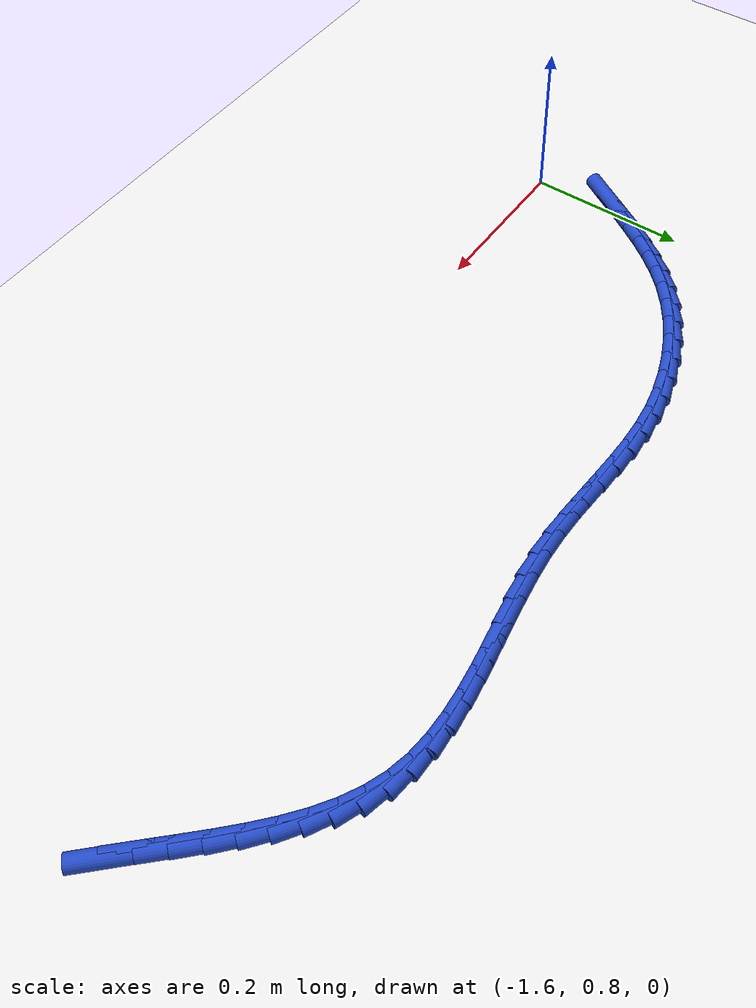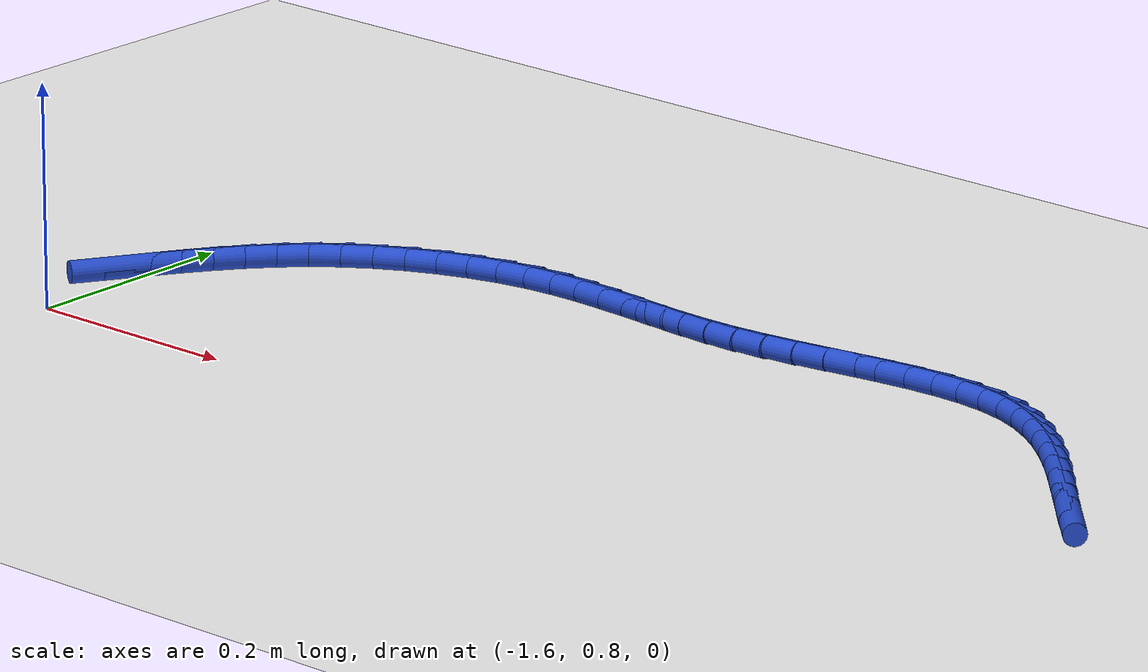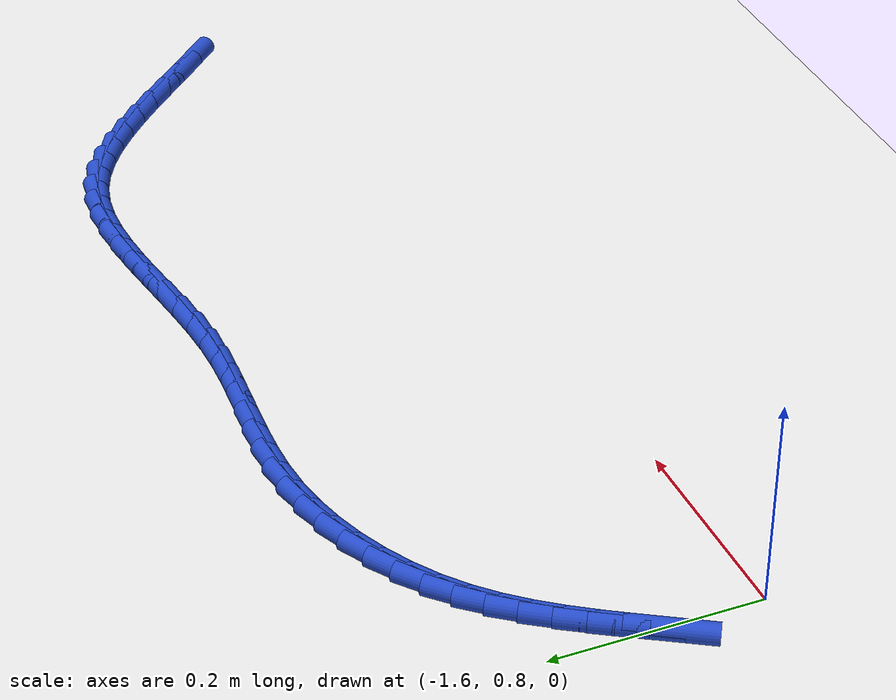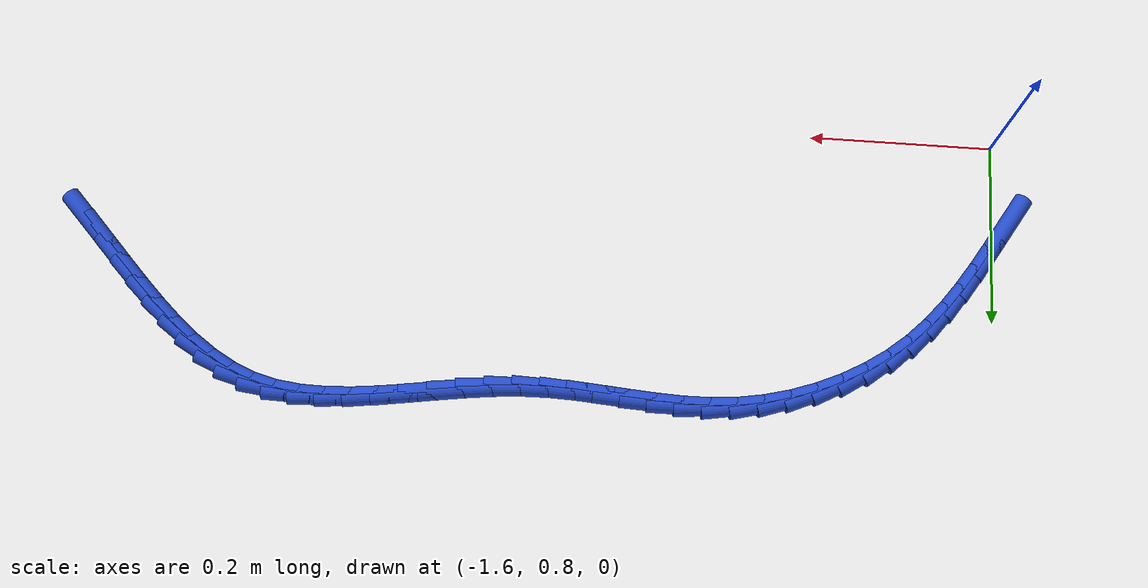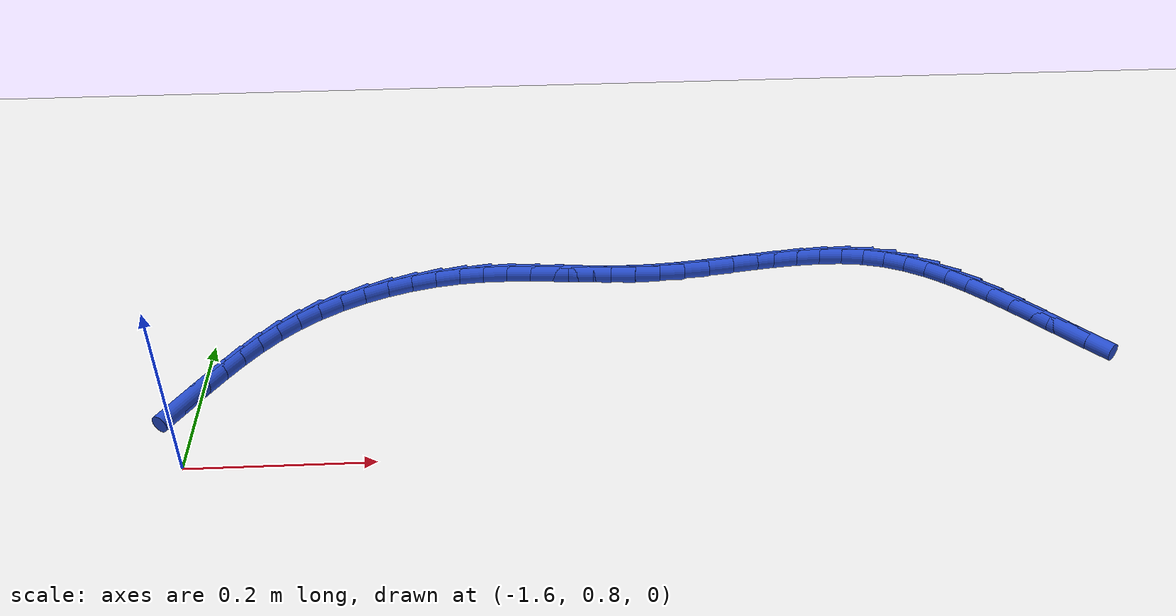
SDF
<sdf version="1.6">
 <world name="default">
  <model name="ground_plane">
   <static>1</static>
   <link name="link">
    <collision name="collision">
     <geometry><plane><normal>0 0 1</normal><size>100 100</size></plane></geometry>
     <surface><friction><ode><mu>100</mu><mu2>50</mu2></ode></friction></surface>
    </collision>
    <visual name="visual">
     <cast_shadows>0</cast_shadows>
     <geometry><plane><normal>0 0 1</normal><size>100 100</size></plane></geometry>
     <material>
      <script><uri>file://media/materials/scripts/gazebo.material</uri><name>Gazebo/WhiteGlow</name></script>
     </material>
    </visual>
   </link>
  </model>
  <model name="line">
   <link name="link_41">
    <pose>-0.618033167621468 0.9546721841326212 0.01 0 1.57 -0.8111275321198776</pose>
    <collision name="collision">
     <geometry><cylinder><radius>0.01</radius><length>0.08</length></cylinder></geometry>
    </collision>
    <visual name="visual">
     <material>
      <script><name>Gazebo/Blue</name><uri>file://media/materials/scripts/gazebo.material</uri></script>
     </material>
     <geometry><cylinder><radius>0.01</radius><length>0.08</length></cylinder></geometry>
    </visual>
   </link>
   <link name="link_42">
    <pose>-0.6390552761179606 0.976804883678784 0.01 0 1.57 -0.8189957309504938</pose>
    <collision name="collision">
     <geometry><cylinder><radius>0.01</radius><length>0.08</length></cylinder></geometry>
    </collision>
    <visual name="visual">
     <material>
      <script><name>Gazebo/Blue</name><uri>file://media/materials/scripts/gazebo.material</uri></script>
     </material>
     <geometry><cylinder><radius>0.01</radius><length>0.08</length></cylinder></geometry>
    </visual>
   </link>
   <link name="link_43">
    <pose>-0.6598640162530264 0.9990610443844463 0.01 0 1.57 -0.8121458686661917</pose>
    <collision name="collision">
     <geometry><cylinder><radius>0.01</radius><length>0.08</length></cylinder></geometry>
    </collision>
    <visual name="visual">
     <material>
      <script><name>Gazebo/Blue</name><uri>file://media/materials/scripts/gazebo.material</uri></script>
     </material>
     <geometry><cylinder><radius>0.01</radius><length>0.08</length></cylinder></geometry>
    </visual>
   </link>
   <link name="link_44">
    <pose>-0.6806362096416035 1.020975274000211 0.01 0 1.57 -0.7900254724383622</pose>
    <collision name="collision">
     <geometry><cylinder><radius>0.01</radius><length>0.08</length></cylinder></geometry>
    </collision>
    <visual name="visual">
     <material>
      <script><name>Gazebo/Blue</name><uri>file://media/materials/scripts/gazebo.material</uri></script>
     </material>
     <geometry><cylinder><radius>0.01</radius><length>0.08</length></cylinder></geometry>
    </visual>
   </link>
   <link name="link_45">
    <pose>-0.7015486778986324 1.0420821802766824 0.01 0 1.57 -0.7514305601705806</pose>
    <collision name="collision">
     <geometry><cylinder><radius>0.01</radius><length>0.08</length></cylinder></geometry>
    </collision>
    <visual name="visual">
     <material>
      <script><name>Gazebo/Blue</name><uri>file://media/materials/scripts/gazebo.material</uri></script>
     </material>
     <geometry><cylinder><radius>0.01</radius><length>0.08</length></cylinder></geometry>
    </visual>
   </link>
   <link name="link_46">
    <pose>-0.7227782426390519 1.0619163709644648 0.01 0 1.57 -0.6945529811503913</pose>
    <collision name="collision">
     <geometry><cylinder><radius>0.01</radius><length>0.08</length></cylinder></geometry>
    </collision>
    <visual name="visual">
     <material>
      <script><name>Gazebo/Blue</name><uri>file://media/materials/scripts/gazebo.material</uri></script>
     </material>
     <geometry><cylinder><radius>0.01</radius><length>0.08</length></cylinder></geometry>
    </visual>
   </link>
   <link name="link_47">
    <pose>-0.744501725477802 1.0800124538141618 0.01 0 1.57 -0.6171886799488164</pose>
    <collision name="collision">
     <geometry><cylinder><radius>0.01</radius><length>0.08</length></cylinder></geometry>
    </collision>
    <visual name="visual">
     <material>
      <script><name>Gazebo/Blue</name><uri>file://media/materials/scripts/gazebo.material</uri></script>
     </material>
     <geometry><cylinder><radius>0.01</radius><length>0.08</length></cylinder></geometry>
    </visual>
   </link>
   <link name="link_48">
    <pose>-0.7668959480298216 1.0959050365763767 0.01 0 1.57 -0.5172846772544478</pose>
    <collision name="collision">
     <geometry><cylinder><radius>0.01</radius><length>0.08</length></cylinder></geometry>
    </collision>
    <visual name="visual">
     <material>
      <script><name>Gazebo/Blue</name><uri>file://media/materials/scripts/gazebo.material</uri></script>
     </material>
     <geometry><cylinder><radius>0.01</radius><length>0.08</length></cylinder></geometry>
    </visual>
   </link>
   <link name="link_49">
    <pose>-0.7901377319100504 1.1091287270017145 0.01 0 1.57 -0.39403604646313295</pose>
    <collision name="collision">
     <geometry><cylinder><radius>0.01</radius><length>0.08</length></cylinder></geometry>
    </collision>
    <visual name="visual">
     <material>
      <script><name>Gazebo/Blue</name><uri>file://media/materials/scripts/gazebo.material</uri></script>
     </material>
     <geometry><cylinder><radius>0.01</radius><length>0.08</length></cylinder></geometry>
    </visual>
   </link>
   <link name="link_50">
    <pose>-0.8144038987334277 1.119218132840778 0.01 0 1.57 -0.25263680146952816</pose>
    <collision name="collision">
     <geometry><cylinder><radius>0.01</radius><length>0.08</length></cylinder></geometry>
    </collision>
    <visual name="visual">
     <material>
      <script><name>Gazebo/Blue</name><uri>file://media/materials/scripts/gazebo.material</uri></script>
     </material>
     <geometry><cylinder><radius>0.01</radius><length>0.08</length></cylinder></geometry>
    </visual>
   </link>
   <link name="link_51">
    <pose>-0.8398457127534601 1.1257860017441947 0.01 0 1.57 -0.12362220827639893</pose>
    <collision name="collision">
     <geometry><cylinder><radius>0.01</radius><length>0.08</length></cylinder></geometry>
    </collision>
    <visual name="visual">
     <material>
      <script><name>Gazebo/Blue</name><uri>file://media/materials/scripts/gazebo.material</uri></script>
     </material>
     <geometry><cylinder><radius>0.01</radius><length>0.08</length></cylinder></geometry>
    </visual>
   </link>
   <link name="link_52">
    <pose>-0.8664047725910601 1.1290861198208022 0.01 0 1.57 -0.021815859087895323</pose>
    <collision name="collision">
     <geometry><cylinder><radius>0.01</radius><length>0.08</length></cylinder></geometry>
    </collision>
    <visual name="visual">
     <material>
      <script><name>Gazebo/Blue</name><uri>file://media/materials/scripts/gazebo.material</uri></script>
     </material>
     <geometry><cylinder><radius>0.01</radius><length>0.08</length></cylinder></geometry>
    </visual>
   </link>
   <link name="link_53">
    <pose>-0.8939199082076889 1.1296864813889231 0.01 0 1.57 0.05396653819626558</pose>
    <collision name="collision">
     <geometry><cylinder><radius>0.01</radius><length>0.08</length></cylinder></geometry>
    </collision>
    <visual name="visual">
     <material>
      <script><name>Gazebo/Blue</name><uri>file://media/materials/scripts/gazebo.material</uri></script>
     </material>
     <geometry><cylinder><radius>0.01</radius><length>0.08</length></cylinder></geometry>
    </visual>
   </link>
   <link name="link_54">
    <pose>-0.9222292434391571 1.1281572396981867 0.01 0 1.57 0.10631889022531293</pose>
    <collision name="collision">
     <geometry><cylinder><radius>0.01</radius><length>0.08</length></cylinder></geometry>
    </collision>
    <visual name="visual">
     <material>
      <script><name>Gazebo/Blue</name><uri>file://media/materials/scripts/gazebo.material</uri></script>
     </material>
     <geometry><cylinder><radius>0.01</radius><length>0.08</length></cylinder></geometry>
    </visual>
   </link>
   <link name="link_55">
    <pose>-0.9511709021212758 1.1250685479982225 0.01 0 1.57 0.1377716470293281</pose>
    <collision name="collision">
     <geometry><cylinder><radius>0.01</radius><length>0.08</length></cylinder></geometry>
    </collision>
    <visual name="visual">
     <material>
      <script><name>Gazebo/Blue</name><uri>file://media/materials/scripts/gazebo.material</uri></script>
     </material>
     <geometry><cylinder><radius>0.01</radius><length>0.08</length></cylinder></geometry>
    </visual>
   </link>
   <link name="link_56">
    <pose>-0.9805830080898551 1.1209905595386602 0.01 0 1.57 0.15017404260625164</pose>
    <collision name="collision">
     <geometry><cylinder><radius>0.01</radius><length>0.08</length></cylinder></geometry>
    </collision>
    <visual name="visual">
     <material>
      <script><name>Gazebo/Blue</name><uri>file://media/materials/scripts/gazebo.material</uri></script>
     </material>
     <geometry><cylinder><radius>0.01</radius><length>0.08</length></cylinder></geometry>
    </visual>
   </link>
   <link name="link_57">
    <pose>-1.0103036851807052 1.1164934275691285 0.01 0 1.57 0.14449984826473888</pose>
    <collision name="collision">
     <geometry><cylinder><radius>0.01</radius><length>0.08</length></cylinder></geometry>
    </collision>
    <visual name="visual">
     <material>
      <script><name>Gazebo/Blue</name><uri>file://media/materials/scripts/gazebo.material</uri></script>
     </material>
     <geometry><cylinder><radius>0.01</radius><length>0.08</length></cylinder></geometry>
    </visual>
   </link>
   <link name="link_58">
    <pose>-1.040171057229638 1.1121473053392583 0.01 0 1.57 0.12083864137538612</pose>
    <collision name="collision">
     <geometry><cylinder><radius>0.01</radius><length>0.08</length></cylinder></geometry>
    </collision>
    <visual name="visual">
     <material>
      <script><name>Gazebo/Blue</name><uri>file://media/materials/scripts/gazebo.material</uri></script>
     </material>
     <geometry><cylinder><radius>0.01</radius><length>0.08</length></cylinder></geometry>
    </visual>
   </link>
   <link name="link_59">
    <pose>-1.0700232480724636 1.108522346098678 0.01 0 1.57 0.07847817109037461</pose>
    <collision name="collision">
     <geometry><cylinder><radius>0.01</radius><length>0.08</length></cylinder></geometry>
    </collision>
    <visual name="visual">
     <material>
      <script><name>Gazebo/Blue</name><uri>file://media/materials/scripts/gazebo.material</uri></script>
     </material>
     <geometry><cylinder><radius>0.01</radius><length>0.08</length></cylinder></geometry>
    </visual>
   </link>
   <link name="link_60">
    <pose>-1.099698381544992 1.1061887030970174 0.01 0 1.57 0.018947330778175637</pose>
    <collision name="collision">
     <geometry><cylinder><radius>0.01</radius><length>0.08</length></cylinder></geometry>
    </collision>
    <visual name="visual">
     <material>
      <script><name>Gazebo/Blue</name><uri>file://media/materials/scripts/gazebo.material</uri></script>
     </material>
     <geometry><cylinder><radius>0.01</radius><length>0.08</length></cylinder></geometry>
    </visual>
   </link>
   <link name="link_61">
    <pose>-1.1290511345351344 1.1056324802136825 0.01 0 1.57 -0.034059775241199367</pose>
    <collision name="collision">
     <geometry><cylinder><radius>0.01</radius><length>0.08</length></cylinder></geometry>
    </collision>
    <visual name="visual">
     <material>
      <script><name>Gazebo/Blue</name><uri>file://media/materials/scripts/gazebo.material</uri></script>
     </material>
     <geometry><cylinder><radius>0.01</radius><length>0.08</length></cylinder></geometry>
    </visual>
   </link>
   <link name="link_62">
    <pose>-1.158077645581702 1.1066214991287058 0.01 0 1.57 -0.06725723691217136</pose>
    <collision name="collision">
     <geometry><cylinder><radius>0.01</radius><length>0.08</length></cylinder></geometry>
    </collision>
    <visual name="visual">
     <material>
      <script><name>Gazebo/Blue</name><uri>file://media/materials/scripts/gazebo.material</uri></script>
     </material>
     <geometry><cylinder><radius>0.01</radius><length>0.08</length></cylinder></geometry>
    </visual>
   </link>
   <link name="link_63">
    <pose>-1.186845798713366 1.1085592883873752 0.01 0 1.57 -0.07986405460465261</pose>
    <collision name="collision">
     <geometry><cylinder><radius>0.01</radius><length>0.08</length></cylinder></geometry>
    </collision>
    <visual name="visual">
     <material>
      <script><name>Gazebo/Blue</name><uri>file://media/materials/scripts/gazebo.material</uri></script>
     </material>
     <geometry><cylinder><radius>0.01</radius><length>0.08</length></cylinder></geometry>
    </visual>
   </link>
   <link name="link_64">
    <pose>-1.2154240390645212 1.11084652747836 0.01 0 1.57 -0.07147324831672551</pose>
    <collision name="collision">
     <geometry><cylinder><radius>0.01</radius><length>0.08</length></cylinder></geometry>
    </collision>
    <visual name="visual">
     <material>
      <script><name>Gazebo/Blue</name><uri>file://media/materials/scripts/gazebo.material</uri></script>
     </material>
     <geometry><cylinder><radius>0.01</radius><length>0.08</length></cylinder></geometry>
    </visual>
   </link>
   <link name="link_65">
    <pose>-1.2438808117695617 1.1128838958903309 0.01 0 1.57 -0.04180732755255949</pose>
    <collision name="collision">
     <geometry><cylinder><radius>0.01</radius><length>0.08</length></cylinder></geometry>
    </collision>
    <visual name="visual">
     <material>
      <script><name>Gazebo/Blue</name><uri>file://media/materials/scripts/gazebo.material</uri></script>
     </material>
     <geometry><cylinder><radius>0.01</radius><length>0.08</length></cylinder></geometry>
    </visual>
   </link>
   <link name="link_66">
    <pose>-1.2722845619628824 1.114072073111958 0.01 0 1.57 0.009160266559993942</pose>
    <collision name="collision">
     <geometry><cylinder><radius>0.01</radius><length>0.08</length></cylinder></geometry>
    </collision>
    <visual name="visual">
     <material>
      <script><name>Gazebo/Blue</name><uri>file://media/materials/scripts/gazebo.material</uri></script>
     </material>
     <geometry><cylinder><radius>0.01</radius><length>0.08</length></cylinder></geometry>
    </visual>
   </link>
   <link name="link_67">
    <pose>-1.3007037347788775 1.1138117386319109 0.01 0 1.57 0.08079890005626623</pose>
    <collision name="collision">
     <geometry><cylinder><radius>0.01</radius><length>0.08</length></cylinder></geometry>
    </collision>
    <visual name="visual">
     <material>
      <script><name>Gazebo/Blue</name><uri>file://media/materials/scripts/gazebo.material</uri></script>
     </material>
     <geometry><cylinder><radius>0.01</radius><length>0.08</length></cylinder></geometry>
    </visual>
   </link>
   <link name="link_68">
    <pose>-1.329206697748374 1.1115037057530914 0.01 0 1.57 0.166385570025785</pose>
    <collision name="collision">
     <geometry><cylinder><radius>0.01</radius><length>0.08</length></cylinder></geometry>
    </collision>
    <visual name="visual">
     <material>
      <script><name>Gazebo/Blue</name><uri>file://media/materials/scripts/gazebo.material</uri></script>
     </material>
     <geometry><cylinder><radius>0.01</radius><length>0.08</length></cylinder></geometry>
    </visual>
   </link>
   <link name="link_69">
    <pose>-1.3577701775487236 1.1067068069359471 0.01 0 1.57 0.25096195431184914</pose>
    <collision name="collision">
     <geometry><cylinder><radius>0.01</radius><length>0.08</length></cylinder></geometry>
    </collision>
    <visual name="visual">
     <material>
      <script><name>Gazebo/Blue</name><uri>file://media/materials/scripts/gazebo.material</uri></script>
     </material>
     <geometry><cylinder><radius>0.01</radius><length>0.08</length></cylinder></geometry>
    </visual>
   </link>
   <link name="link_70">
    <pose>-1.3861020556874024 1.099443452681102 0.01 0 1.57 0.3336914762457721</pose>
    <collision name="collision">
     <geometry><cylinder><radius>0.01</radius><length>0.08</length></cylinder></geometry>
    </collision>
    <visual name="visual">
     <material>
      <script><name>Gazebo/Blue</name><uri>file://media/materials/scripts/gazebo.material</uri></script>
     </material>
     <geometry><cylinder><radius>0.01</radius><length>0.08</length></cylinder></geometry>
    </visual>
   </link>
   <link name="link_71">
    <pose>-1.4138611665381076 1.0898206269786848 0.01 0 1.57 0.416484865248859</pose>
    <collision name="collision">
     <geometry><cylinder><radius>0.01</radius><length>0.08</length></cylinder></geometry>
    </collision>
    <visual name="visual">
     <material>
      <script><name>Gazebo/Blue</name><uri>file://media/materials/scripts/gazebo.material</uri></script>
     </material>
     <geometry><cylinder><radius>0.01</radius><length>0.08</length></cylinder></geometry>
    </visual>
   </link>
   <link name="link_72">
    <pose>-1.4407063444745367 1.077945313818826 0.01 0 1.57 0.5012298617428621</pose>
    <collision name="collision">
     <geometry><cylinder><radius>0.01</radius><length>0.08</length></cylinder></geometry>
    </collision>
    <visual name="visual">
     <material>
      <script><name>Gazebo/Blue</name><uri>file://media/materials/scripts/gazebo.material</uri></script>
     </material>
     <geometry><cylinder><radius>0.01</radius><length>0.08</length></cylinder></geometry>
    </visual>
   </link>
   <link name="link_73">
    <pose>-1.4662964238703877 1.0639244971916537 0.01 0 1.57 0.5898313972774619</pose>
    <collision name="collision">
     <geometry><cylinder><radius>0.01</radius><length>0.08</length></cylinder></geometry>
    </collision>
    <visual name="visual">
     <material>
      <script><name>Gazebo/Blue</name><uri>file://media/materials/scripts/gazebo.material</uri></script>
     </material>
     <geometry><cylinder><radius>0.01</radius><length>0.08</length></cylinder></geometry>
    </visual>
   </link>
   <link name="link_74">
    <pose>-1.4902902390993582 1.0478651610872975 0.01 0 1.57 0.6842015666213295</pose>
    <collision name="collision">
     <geometry><cylinder><radius>0.01</radius><length>0.08</length></cylinder></geometry>
    </collision>
    <visual name="visual">
     <material>
      <script><name>Gazebo/Blue</name><uri>file://media/materials/scripts/gazebo.material</uri></script>
     </material>
     <geometry><cylinder><radius>0.01</radius><length>0.08</length></cylinder></geometry>
    </visual>
   </link>
   <link name="link_75">
    <pose>-1.5123475015055106 1.0298745031128753 0.01 0 1.57 0.780053804157712</pose>
    <collision name="collision">
     <geometry><cylinder><radius>0.01</radius><length>0.08</length></cylinder></geometry>
    </collision>
    <visual name="visual">
     <material>
      <script><name>Gazebo/Blue</name><uri>file://media/materials/scripts/gazebo.material</uri></script>
     </material>
     <geometry><cylinder><radius>0.01</radius><length>0.08</length></cylinder></geometry>
    </visual>
   </link>
   <link name="link_76">
    <pose>-1.5323263620153036 1.0101080578177477 0.01 0 1.57 0.8629842327079048</pose>
    <collision name="collision">
     <geometry><cylinder><radius>0.01</radius><length>0.08</length></cylinder></geometry>
    </collision>
    <visual name="visual">
     <material>
      <script><name>Gazebo/Blue</name><uri>file://media/materials/scripts/gazebo.material</uri></script>
     </material>
     <geometry><cylinder><radius>0.01</radius><length>0.08</length></cylinder></geometry>
    </visual>
   </link>
   <link name="link_77">
    <pose>-1.5505340297875319 0.9888307436835464 0.01 0 1.57 0.9294520587463381</pose>
    <collision name="collision">
     <geometry><cylinder><radius>0.01</radius><length>0.08</length></cylinder></geometry>
    </collision>
    <visual name="visual">
     <material>
      <script><name>Gazebo/Blue</name><uri>file://media/materials/scripts/gazebo.material</uri></script>
     </material>
     <geometry><cylinder><radius>0.01</radius><length>0.08</length></cylinder></geometry>
    </visual>
   </link>
   <link name="link_78">
    <pose>-1.5673394651487784 0.9663225208614873 0.01 0 1.57 0.9788873466996397</pose>
    <collision name="collision">
     <geometry><cylinder><radius>0.01</radius><length>0.08</length></cylinder></geometry>
    </collision>
    <visual name="visual">
     <material>
      <script><name>Gazebo/Blue</name><uri>file://media/materials/scripts/gazebo.material</uri></script>
     </material>
     <geometry><cylinder><radius>0.01</radius><length>0.08</length></cylinder></geometry>
    </visual>
   </link>
   <link name="link_79">
    <pose>-1.5831116284256277 0.9428633495027873 0.01 0 1.57 1.0114076266689458</pose>
    <collision name="collision">
     <geometry><cylinder><radius>0.01</radius><length>0.08</length></cylinder></geometry>
    </collision>
    <visual name="visual">
     <material>
      <script><name>Gazebo/Blue</name><uri>file://media/materials/scripts/gazebo.material</uri></script>
     </material>
     <geometry><cylinder><radius>0.01</radius><length>0.08</length></cylinder></geometry>
    </visual>
   </link>
   <link name="link_80">
    <pose>-1.5982194799446616 0.9187331897586619 0.01 0 1.57 1.0273899686158166</pose>
    <collision name="collision">
     <geometry><cylinder><radius>0.01</radius><length>0.08</length></cylinder></geometry>
    </collision>
    <visual name="visual">
     <material>
      <script><name>Gazebo/Blue</name><uri>file://media/materials/scripts/gazebo.material</uri></script>
     </material>
     <geometry><cylinder><radius>0.01</radius><length>0.08</length></cylinder></geometry>
    </visual>
   </link>
   <link name="link_81">
    <pose>-1.6130319800324653 0.8942120017803273 0.01 0 1.57 1.0271961795156876</pose>
    <collision name="collision">
     <geometry><cylinder><radius>0.01</radius><length>0.08</length></cylinder></geometry>
    </collision>
    <visual name="visual">
     <material>
      <script><name>Gazebo/Blue</name><uri>file://media/materials/scripts/gazebo.material</uri></script>
     </material>
     <geometry><cylinder><radius>0.01</radius><length>0.08</length></cylinder></geometry>
    </visual>
   </link>
  </model>
 </world>
</sdf>
